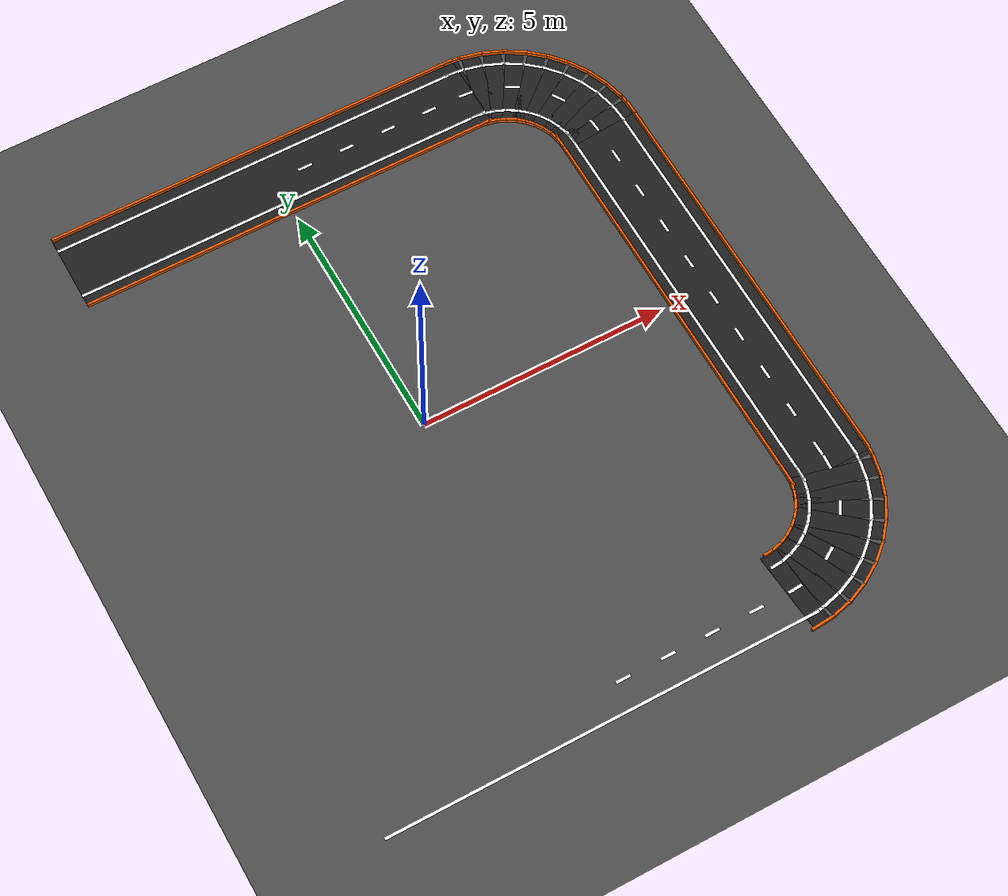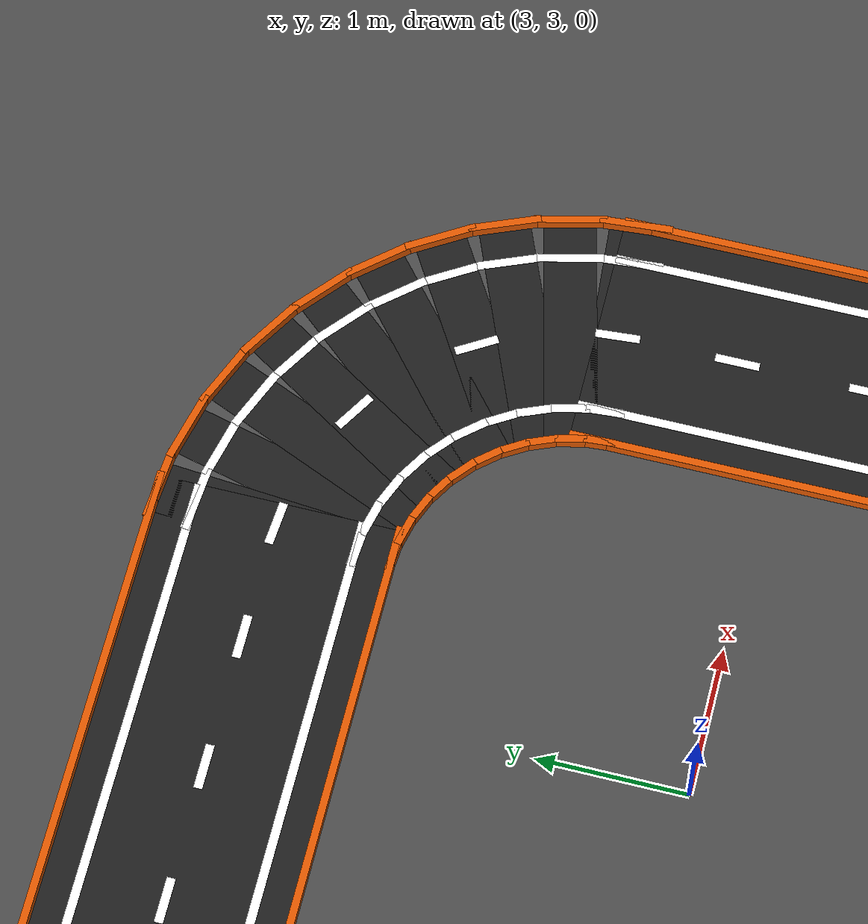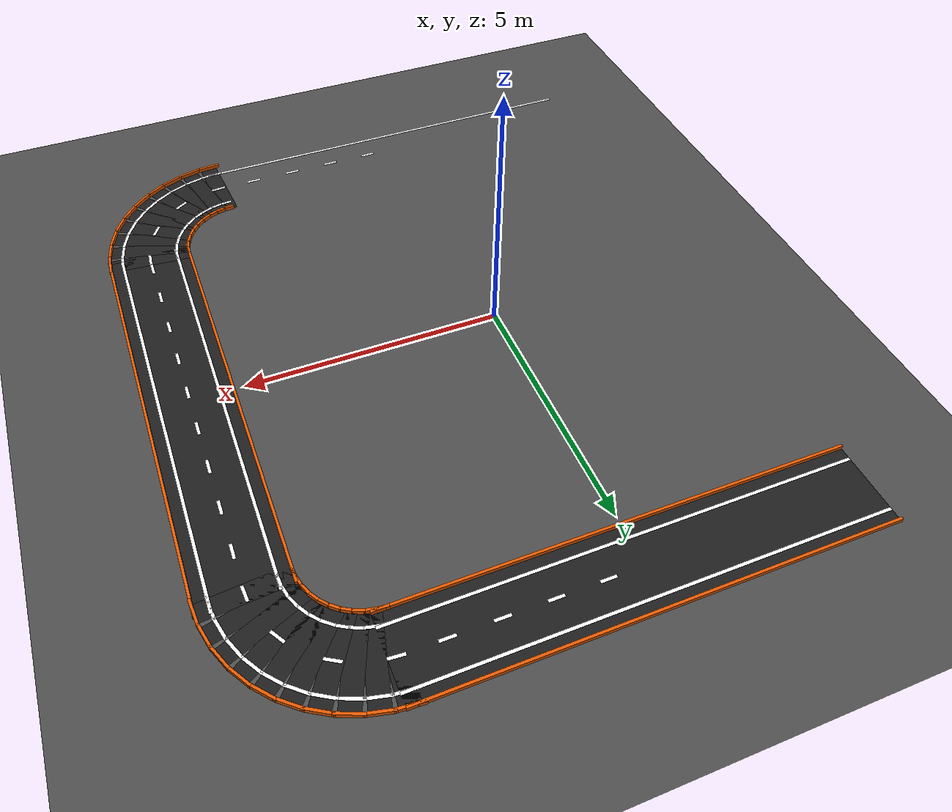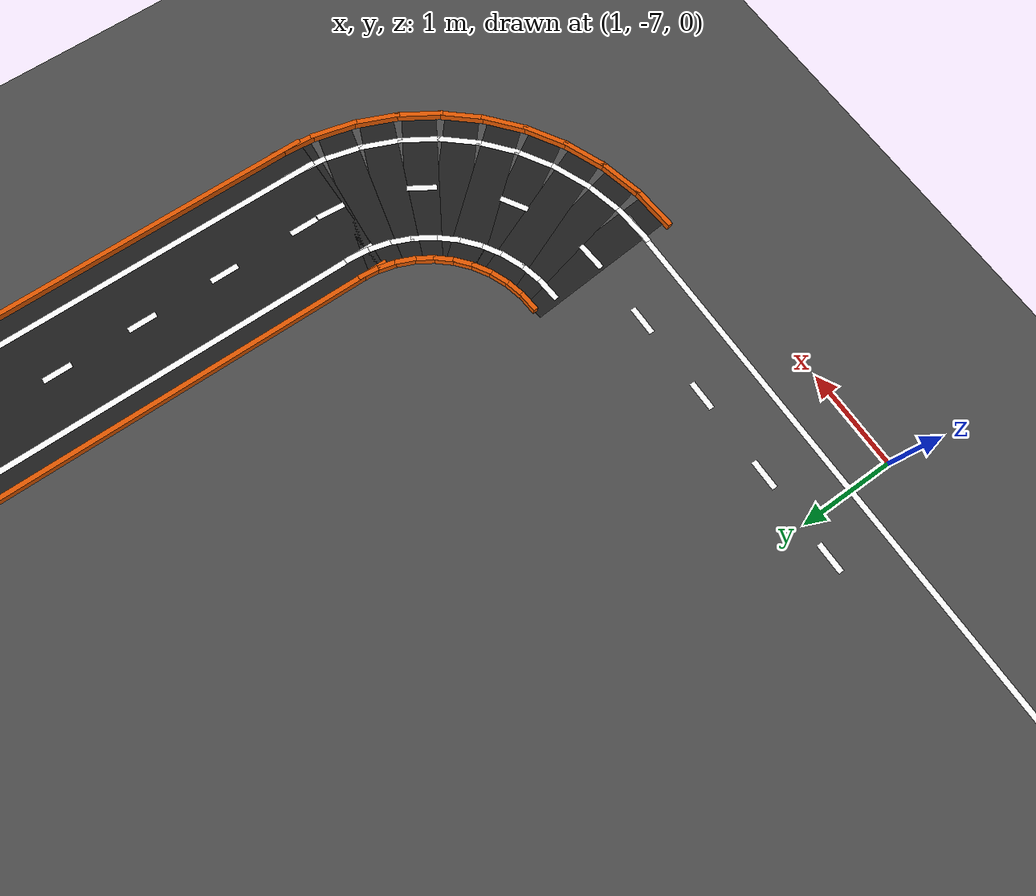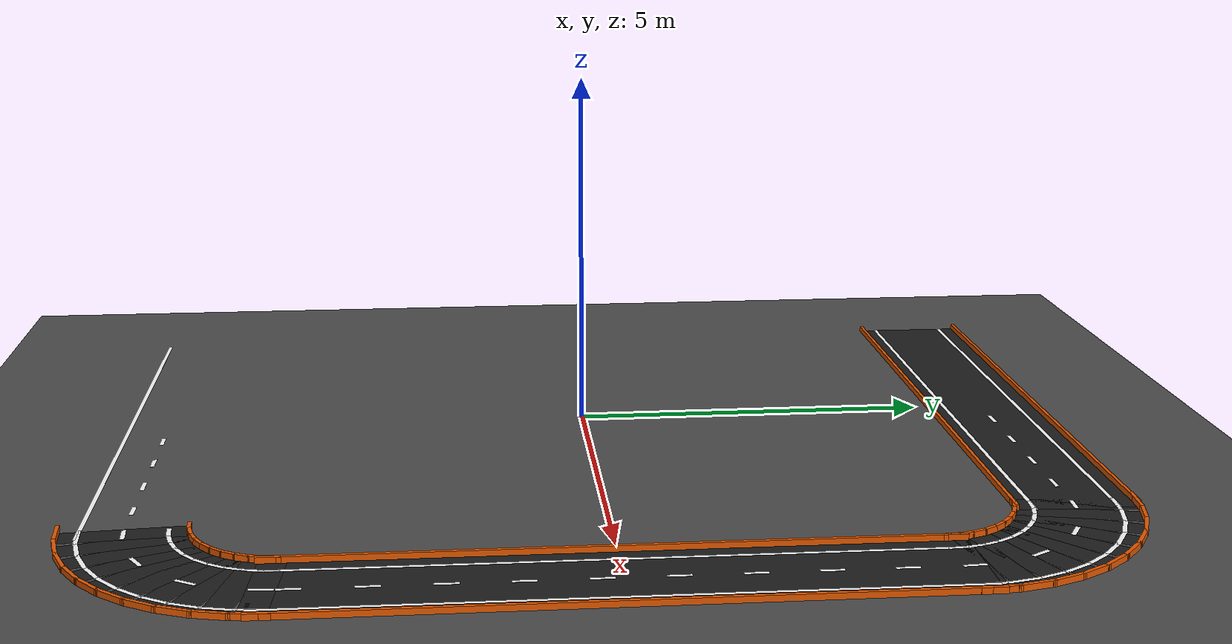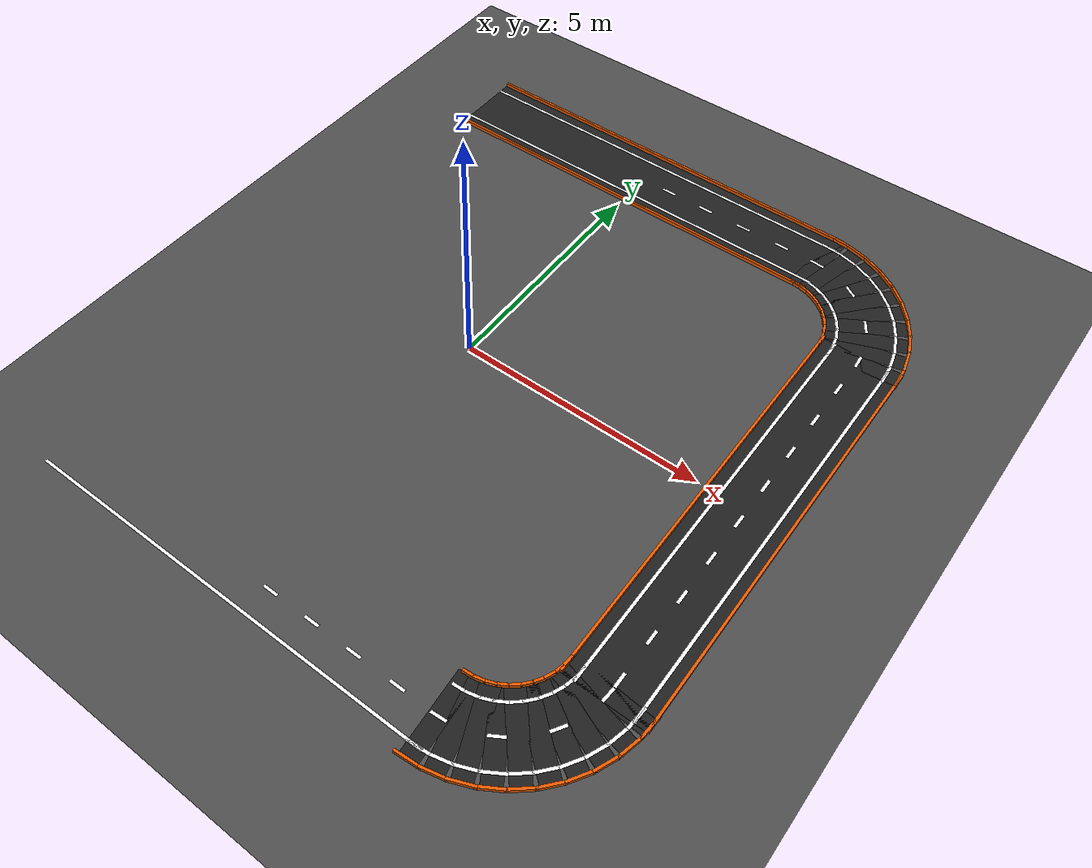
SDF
<sdf version="1.6">
 <world name="qcar_oval_wide">
  <model name="ground_plane">
   <static>true</static>
   <link name="link">
    <collision name="collision">
     <geometry><plane><normal>0 0 1</normal><size>200 200</size></plane></geometry>
    </collision>
    <visual name="visual">
     <geometry><plane><normal>0 0 1</normal><size>200 200</size></plane></geometry>
     <material><ambient>0.3 0.3 0.3 1</ambient><diffuse>0.3 0.3 0.3 1</diffuse></material>
    </visual>
   </link>
  </model>
  <model name="m4">
   <static>true</static>
   <pose>0.0000 -6.5500 0.00200 0 0 0.00000</pose>
   <link name="l">
    <visual name="v">
     <geometry><box><size>8.6000 0.0600 0.0010</size></box></geometry>
     <material><ambient>1 1 1 1</ambient><diffuse>1 1 1 1</diffuse></material>
    </visual>
   </link>
  </model>
  <model name="m10">
   <static>true</static>
   <pose>0.6500 -6.0000 0.00200 0 0 0.00000</pose>
   <link name="l">
    <visual name="v">
     <geometry><box><size>0.3000 0.0600 0.0010</size></box></geometry>
     <material><ambient>1 1 1 1</ambient><diffuse>1 1 1 1</diffuse></material>
    </visual>
   </link>
  </model>
  <model name="m11">
   <static>true</static>
   <pose>1.5500 -6.0000 0.00200 0 0 0.00000</pose>
   <link name="l">
    <visual name="v">
     <geometry><box><size>0.3000 0.0600 0.0010</size></box></geometry>
     <material><ambient>1 1 1 1</ambient><diffuse>1 1 1 1</diffuse></material>
    </visual>
   </link>
  </model>
  <model name="m12">
   <static>true</static>
   <pose>2.4500 -6.0000 0.00200 0 0 0.00000</pose>
   <link name="l">
    <visual name="v">
     <geometry><box><size>0.3000 0.0600 0.0010</size></box></geometry>
     <material><ambient>1 1 1 1</ambient><diffuse>1 1 1 1</diffuse></material>
    </visual>
   </link>
  </model>
  <model name="m13">
   <static>true</static>
   <pose>3.3500 -6.0000 0.00200 0 0 0.00000</pose>
   <link name="l">
    <visual name="v">
     <geometry><box><size>0.3000 0.0600 0.0010</size></box></geometry>
     <material><ambient>1 1 1 1</ambient><diffuse>1 1 1 1</diffuse></material>
    </visual>
   </link>
  </model>
  <model name="m14">
   <static>true</static>
   <pose>0.0000 6.0000 0.00100 0 0 0.00000</pose>
   <link name="l">
    <visual name="v">
     <geometry><box><size>8.6000 1.6000 0.0010</size></box></geometry>
     <material><ambient>0.12 0.12 0.12 1</ambient><diffuse>0.12 0.12 0.12 1</diffuse></material>
    </visual>
   </link>
  </model>
  <model name="m15">
   <static>true</static>
   <pose>0.0000 5.2000 0.04000 0 0 0.00000</pose>
   <link name="l">
    <visual name="v">
     <geometry><box><size>8.6000 0.0500 0.0800</size></box></geometry>
     <material><ambient>0.9 0.35 0.0 1</ambient><diffuse>0.9 0.35 0.0 1</diffuse></material>
    </visual>
   </link>
  </model>
  <model name="m16">
   <static>true</static>
   <pose>0.0000 6.8000 0.04000 0 0 0.00000</pose>
   <link name="l">
    <visual name="v">
     <geometry><box><size>8.6000 0.0500 0.0800</size></box></geometry>
     <material><ambient>0.9 0.35 0.0 1</ambient><diffuse>0.9 0.35 0.0 1</diffuse></material>
    </visual>
   </link>
  </model>
  <model name="m17">
   <static>true</static>
   <pose>0.0000 5.4500 0.00200 0 0 0.00000</pose>
   <link name="l">
    <visual name="v">
     <geometry><box><size>8.6000 0.0600 0.0010</size></box></geometry>
     <material><ambient>1 1 1 1</ambient><diffuse>1 1 1 1</diffuse></material>
    </visual>
   </link>
  </model>
  <model name="m18">
   <static>true</static>
   <pose>0.0000 6.5500 0.00200 0 0 0.00000</pose>
   <link name="l">
    <visual name="v">
     <geometry><box><size>8.6000 0.0600 0.0010</size></box></geometry>
     <material><ambient>1 1 1 1</ambient><diffuse>1 1 1 1</diffuse></material>
    </visual>
   </link>
  </model>
  <model name="m24">
   <static>true</static>
   <pose>0.6500 6.0000 0.00200 0 0 0.00000</pose>
   <link name="l">
    <visual name="v">
     <geometry><box><size>0.3000 0.0600 0.0010</size></box></geometry>
     <material><ambient>1 1 1 1</ambient><diffuse>1 1 1 1</diffuse></material>
    </visual>
   </link>
  </model>
  <model name="m25">
   <static>true</static>
   <pose>1.5500 6.0000 0.00200 0 0 0.00000</pose>
   <link name="l">
    <visual name="v">
     <geometry><box><size>0.3000 0.0600 0.0010</size></box></geometry>
     <material><ambient>1 1 1 1</ambient><diffuse>1 1 1 1</diffuse></material>
    </visual>
   </link>
  </model>
  <model name="m26">
   <static>true</static>
   <pose>2.4500 6.0000 0.00200 0 0 0.00000</pose>
   <link name="l">
    <visual name="v">
     <geometry><box><size>0.3000 0.0600 0.0010</size></box></geometry>
     <material><ambient>1 1 1 1</ambient><diffuse>1 1 1 1</diffuse></material>
    </visual>
   </link>
  </model>
  <model name="m27">
   <static>true</static>
   <pose>3.3500 6.0000 0.00200 0 0 0.00000</pose>
   <link name="l">
    <visual name="v">
     <geometry><box><size>0.3000 0.0600 0.0010</size></box></geometry>
     <material><ambient>1 1 1 1</ambient><diffuse>1 1 1 1</diffuse></material>
    </visual>
   </link>
  </model>
  <model name="m28">
   <static>true</static>
   <pose>6.0000 0.0000 0.00100 0 0 0.00000</pose>
   <link name="l">
    <visual name="v">
     <geometry><box><size>1.6000 8.6000 0.0010</size></box></geometry>
     <material><ambient>0.12 0.12 0.12 1</ambient><diffuse>0.12 0.12 0.12 1</diffuse></material>
    </visual>
   </link>
  </model>
  <model name="m29">
   <static>true</static>
   <pose>5.2000 0.0000 0.04000 0 0 0.00000</pose>
   <link name="l">
    <visual name="v">
     <geometry><box><size>0.0500 8.6000 0.0800</size></box></geometry>
     <material><ambient>0.9 0.35 0.0 1</ambient><diffuse>0.9 0.35 0.0 1</diffuse></material>
    </visual>
   </link>
  </model>
  <model name="m30">
   <static>true</static>
   <pose>6.8000 0.0000 0.04000 0 0 0.00000</pose>
   <link name="l">
    <visual name="v">
     <geometry><box><size>0.0500 8.6000 0.0800</size></box></geometry>
     <material><ambient>0.9 0.35 0.0 1</ambient><diffuse>0.9 0.35 0.0 1</diffuse></material>
    </visual>
   </link>
  </model>
  <model name="m31">
   <static>true</static>
   <pose>5.4500 0.0000 0.00200 0 0 0.00000</pose>
   <link name="l">
    <visual name="v">
     <geometry><box><size>0.0600 8.6000 0.0010</size></box></geometry>
     <material><ambient>1 1 1 1</ambient><diffuse>1 1 1 1</diffuse></material>
    </visual>
   </link>
  </model>
  <model name="m32">
   <static>true</static>
   <pose>6.5500 0.0000 0.00200 0 0 0.00000</pose>
   <link name="l">
    <visual name="v">
     <geometry><box><size>0.0600 8.6000 0.0010</size></box></geometry>
     <material><ambient>1 1 1 1</ambient><diffuse>1 1 1 1</diffuse></material>
    </visual>
   </link>
  </model>
  <model name="m33">
   <static>true</static>
   <pose>6.0000 -3.8500 0.00200 0 0 0.00000</pose>
   <link name="l">
    <visual name="v">
     <geometry><box><size>0.0600 0.3000 0.0010</size></box></geometry>
     <material><ambient>1 1 1 1</ambient><diffuse>1 1 1 1</diffuse></material>
    </visual>
   </link>
  </model>
  <model name="m34">
   <static>true</static>
   <pose>6.0000 -2.9500 0.00200 0 0 0.00000</pose>
   <link name="l">
    <visual name="v">
     <geometry><box><size>0.0600 0.3000 0.0010</size></box></geometry>
     <material><ambient>1 1 1 1</ambient><diffuse>1 1 1 1</diffuse></material>
    </visual>
   </link>
  </model>
  <model name="m35">
   <static>true</static>
   <pose>6.0000 -2.0500 0.00200 0 0 0.00000</pose>
   <link name="l">
    <visual name="v">
     <geometry><box><size>0.0600 0.3000 0.0010</size></box></geometry>
     <material><ambient>1 1 1 1</ambient><diffuse>1 1 1 1</diffuse></material>
    </visual>
   </link>
  </model>
  <model name="m36">
   <static>true</static>
   <pose>6.0000 -1.1500 0.00200 0 0 0.00000</pose>
   <link name="l">
    <visual name="v">
     <geometry><box><size>0.0600 0.3000 0.0010</size></box></geometry>
     <material><ambient>1 1 1 1</ambient><diffuse>1 1 1 1</diffuse></material>
    </visual>
   </link>
  </model>
  <model name="m37">
   <static>true</static>
   <pose>6.0000 -0.2500 0.00200 0 0 0.00000</pose>
   <link name="l">
    <visual name="v">
     <geometry><box><size>0.0600 0.3000 0.0010</size></box></geometry>
     <material><ambient>1 1 1 1</ambient><diffuse>1 1 1 1</diffuse></material>
    </visual>
   </link>
  </model>
  <model name="m38">
   <static>true</static>
   <pose>6.0000 0.6500 0.00200 0 0 0.00000</pose>
   <link name="l">
    <visual name="v">
     <geometry><box><size>0.0600 0.3000 0.0010</size></box></geometry>
     <material><ambient>1 1 1 1</ambient><diffuse>1 1 1 1</diffuse></material>
    </visual>
   </link>
  </model>
  <model name="m39">
   <static>true</static>
   <pose>6.0000 1.5500 0.00200 0 0 0.00000</pose>
   <link name="l">
    <visual name="v">
     <geometry><box><size>0.0600 0.3000 0.0010</size></box></geometry>
     <material><ambient>1 1 1 1</ambient><diffuse>1 1 1 1</diffuse></material>
    </visual>
   </link>
  </model>
  <model name="m40">
   <static>true</static>
   <pose>6.0000 2.4500 0.00200 0 0 0.00000</pose>
   <link name="l">
    <visual name="v">
     <geometry><box><size>0.0600 0.3000 0.0010</size></box></geometry>
     <material><ambient>1 1 1 1</ambient><diffuse>1 1 1 1</diffuse></material>
    </visual>
   </link>
  </model>
  <model name="m41">
   <static>true</static>
   <pose>6.0000 3.3500 0.00200 0 0 0.00000</pose>
   <link name="l">
    <visual name="v">
     <geometry><box><size>0.0600 0.3000 0.0010</size></box></geometry>
     <material><ambient>1 1 1 1</ambient><diffuse>1 1 1 1</diffuse></material>
    </visual>
   </link>
  </model>
  <model name="m56">
   <static>true</static>
   <pose>4.1569 -5.9938 0.00100 0 0 0.07854</pose>
   <link name="l">
    <visual name="v">
     <geometry><box><size>0.3519 1.6000 0.0010</size></box></geometry>
     <material><ambient>0.12 0.12 0.12 1</ambient><diffuse>0.12 0.12 0.12 1</diffuse></material>
    </visual>
   </link>
  </model>
  <model name="m57">
   <static>true</static>
   <pose>4.0942 -5.1963 0.04000 0 0 0.07854</pose>
   <link name="l">
    <visual name="v">
     <geometry><box><size>0.2111 0.0500 0.0800</size></box></geometry>
     <material><ambient>0.9 0.35 0.0 1</ambient><diffuse>0.9 0.35 0.0 1</diffuse></material>
    </visual>
   </link>
  </model>
  <model name="m58">
   <static>true</static>
   <pose>4.2197 -6.7914 0.04000 0 0 0.07854</pose>
   <link name="l">
    <visual name="v">
     <geometry><box><size>0.4926 0.0500 0.0800</size></box></geometry>
     <material><ambient>0.9 0.35 0.0 1</ambient><diffuse>0.9 0.35 0.0 1</diffuse></material>
    </visual>
   </link>
  </model>
  <model name="m59">
   <static>true</static>
   <pose>4.1138 -5.4455 0.00200 0 0 0.07854</pose>
   <link name="l">
    <visual name="v">
     <geometry><box><size>0.2551 0.0600 0.0010</size></box></geometry>
     <material><ambient>1 1 1 1</ambient><diffuse>1 1 1 1</diffuse></material>
    </visual>
   </link>
  </model>
  <model name="m60">
   <static>true</static>
   <pose>4.2001 -6.5421 0.00200 0 0 0.07854</pose>
   <link name="l">
    <visual name="v">
     <geometry><box><size>0.4486 0.0600 0.0010</size></box></geometry>
     <material><ambient>1 1 1 1</ambient><diffuse>1 1 1 1</diffuse></material>
    </visual>
   </link>
  </model>
  <model name="m61">
   <static>true</static>
   <pose>4.1569 -5.9938 0.00200 0 0 0.07854</pose>
   <link name="l">
    <visual name="v">
     <geometry><box><size>0.3000 0.0600 0.0010</size></box></geometry>
     <material><ambient>1 1 1 1</ambient><diffuse>1 1 1 1</diffuse></material>
    </visual>
   </link>
  </model>
  <model name="m62">
   <static>true</static>
   <pose>4.4669 -5.9447 0.00100 0 0 0.23562</pose>
   <link name="l">
    <visual name="v">
     <geometry><box><size>0.3519 1.6000 0.0010</size></box></geometry>
     <material><ambient>0.12 0.12 0.12 1</ambient><diffuse>0.12 0.12 0.12 1</diffuse></material>
    </visual>
   </link>
  </model>
  <model name="m63">
   <static>true</static>
   <pose>4.2801 -5.1668 0.04000 0 0 0.23562</pose>
   <link name="l">
    <visual name="v">
     <geometry><box><size>0.2111 0.0500 0.0800</size></box></geometry>
     <material><ambient>0.9 0.35 0.0 1</ambient><diffuse>0.9 0.35 0.0 1</diffuse></material>
    </visual>
   </link>
  </model>
  <model name="m64">
   <static>true</static>
   <pose>4.6536 -6.7226 0.04000 0 0 0.23562</pose>
   <link name="l">
    <visual name="v">
     <geometry><box><size>0.4926 0.0500 0.0800</size></box></geometry>
     <material><ambient>0.9 0.35 0.0 1</ambient><diffuse>0.9 0.35 0.0 1</diffuse></material>
    </visual>
   </link>
  </model>
  <model name="m65">
   <static>true</static>
   <pose>4.3385 -5.4099 0.00200 0 0 0.23562</pose>
   <link name="l">
    <visual name="v">
     <geometry><box><size>0.2551 0.0600 0.0010</size></box></geometry>
     <material><ambient>1 1 1 1</ambient><diffuse>1 1 1 1</diffuse></material>
    </visual>
   </link>
  </model>
  <model name="m66">
   <static>true</static>
   <pose>4.5953 -6.4795 0.00200 0 0 0.23562</pose>
   <link name="l">
    <visual name="v">
     <geometry><box><size>0.4486 0.0600 0.0010</size></box></geometry>
     <material><ambient>1 1 1 1</ambient><diffuse>1 1 1 1</diffuse></material>
    </visual>
   </link>
  </model>
  <model name="m67">
   <static>true</static>
   <pose>4.7654 -5.8478 0.00100 0 0 0.39270</pose>
   <link name="l">
    <visual name="v">
     <geometry><box><size>0.3519 1.6000 0.0010</size></box></geometry>
     <material><ambient>0.12 0.12 0.12 1</ambient><diffuse>0.12 0.12 0.12 1</diffuse></material>
    </visual>
   </link>
  </model>
  <model name="m68">
   <static>true</static>
   <pose>4.4592 -5.1087 0.04000 0 0 0.39270</pose>
   <link name="l">
    <visual name="v">
     <geometry><box><size>0.2111 0.0500 0.0800</size></box></geometry>
     <material><ambient>0.9 0.35 0.0 1</ambient><diffuse>0.9 0.35 0.0 1</diffuse></material>
    </visual>
   </link>
  </model>
  <model name="m69">
   <static>true</static>
   <pose>5.0715 -6.5869 0.04000 0 0 0.39270</pose>
   <link name="l">
    <visual name="v">
     <geometry><box><size>0.4926 0.0500 0.0800</size></box></geometry>
     <material><ambient>0.9 0.35 0.0 1</ambient><diffuse>0.9 0.35 0.0 1</diffuse></material>
    </visual>
   </link>
  </model>
  <model name="m70">
   <static>true</static>
   <pose>4.5549 -5.3396 0.00200 0 0 0.39270</pose>
   <link name="l">
    <visual name="v">
     <geometry><box><size>0.2551 0.0600 0.0010</size></box></geometry>
     <material><ambient>1 1 1 1</ambient><diffuse>1 1 1 1</diffuse></material>
    </visual>
   </link>
  </model>
  <model name="m71">
   <static>true</static>
   <pose>4.9758 -6.3559 0.00200 0 0 0.39270</pose>
   <link name="l">
    <visual name="v">
     <geometry><box><size>0.4486 0.0600 0.0010</size></box></geometry>
     <material><ambient>1 1 1 1</ambient><diffuse>1 1 1 1</diffuse></material>
    </visual>
   </link>
  </model>
  <model name="m72">
   <static>true</static>
   <pose>5.0450 -5.7053 0.00100 0 0 0.54978</pose>
   <link name="l">
    <visual name="v">
     <geometry><box><size>0.3519 1.6000 0.0010</size></box></geometry>
     <material><ambient>0.12 0.12 0.12 1</ambient><diffuse>0.12 0.12 0.12 1</diffuse></material>
    </visual>
   </link>
  </model>
  <model name="m73">
   <static>true</static>
   <pose>4.6270 -5.0232 0.04000 0 0 0.54978</pose>
   <link name="l">
    <visual name="v">
     <geometry><box><size>0.2111 0.0500 0.0800</size></box></geometry>
     <material><ambient>0.9 0.35 0.0 1</ambient><diffuse>0.9 0.35 0.0 1</diffuse></material>
    </visual>
   </link>
  </model>
  <model name="m74">
   <static>true</static>
   <pose>5.4630 -6.3874 0.04000 0 0 0.54978</pose>
   <link name="l">
    <visual name="v">
     <geometry><box><size>0.4926 0.0500 0.0800</size></box></geometry>
     <material><ambient>0.9 0.35 0.0 1</ambient><diffuse>0.9 0.35 0.0 1</diffuse></material>
    </visual>
   </link>
  </model>
  <model name="m75">
   <static>true</static>
   <pose>4.7576 -5.2363 0.00200 0 0 0.54978</pose>
   <link name="l">
    <visual name="v">
     <geometry><box><size>0.2551 0.0600 0.0010</size></box></geometry>
     <material><ambient>1 1 1 1</ambient><diffuse>1 1 1 1</diffuse></material>
    </visual>
   </link>
  </model>
  <model name="m76">
   <static>true</static>
   <pose>5.3324 -6.1742 0.00200 0 0 0.54978</pose>
   <link name="l">
    <visual name="v">
     <geometry><box><size>0.4486 0.0600 0.0010</size></box></geometry>
     <material><ambient>1 1 1 1</ambient><diffuse>1 1 1 1</diffuse></material>
    </visual>
   </link>
  </model>
  <model name="m77">
   <static>true</static>
   <pose>5.0450 -5.7053 0.00200 0 0 0.54978</pose>
   <link name="l">
    <visual name="v">
     <geometry><box><size>0.3000 0.0600 0.0010</size></box></geometry>
     <material><ambient>1 1 1 1</ambient><diffuse>1 1 1 1</diffuse></material>
    </visual>
   </link>
  </model>
  <model name="m78">
   <static>true</static>
   <pose>5.2989 -5.5208 0.00100 0 0 0.70686</pose>
   <link name="l">
    <visual name="v">
     <geometry><box><size>0.3519 1.6000 0.0010</size></box></geometry>
     <material><ambient>0.12 0.12 0.12 1</ambient><diffuse>0.12 0.12 0.12 1</diffuse></material>
    </visual>
   </link>
  </model>
  <model name="m79">
   <static>true</static>
   <pose>4.7793 -4.9125 0.04000 0 0 0.70686</pose>
   <link name="l">
    <visual name="v">
     <geometry><box><size>0.2111 0.0500 0.0800</size></box></geometry>
     <material><ambient>0.9 0.35 0.0 1</ambient><diffuse>0.9 0.35 0.0 1</diffuse></material>
    </visual>
   </link>
  </model>
  <model name="m80">
   <static>true</static>
   <pose>5.8185 -6.1291 0.04000 0 0 0.70686</pose>
   <link name="l">
    <visual name="v">
     <geometry><box><size>0.4926 0.0500 0.0800</size></box></geometry>
     <material><ambient>0.9 0.35 0.0 1</ambient><diffuse>0.9 0.35 0.0 1</diffuse></material>
    </visual>
   </link>
  </model>
  <model name="m81">
   <static>true</static>
   <pose>4.9417 -5.1026 0.00200 0 0 0.70686</pose>
   <link name="l">
    <visual name="v">
     <geometry><box><size>0.2551 0.0600 0.0010</size></box></geometry>
     <material><ambient>1 1 1 1</ambient><diffuse>1 1 1 1</diffuse></material>
    </visual>
   </link>
  </model>
  <model name="m82">
   <static>true</static>
   <pose>5.6561 -5.9390 0.00200 0 0 0.70686</pose>
   <link name="l">
    <visual name="v">
     <geometry><box><size>0.4486 0.0600 0.0010</size></box></geometry>
     <material><ambient>1 1 1 1</ambient><diffuse>1 1 1 1</diffuse></material>
    </visual>
   </link>
  </model>
  <model name="m83">
   <static>true</static>
   <pose>5.5208 -5.2989 0.00100 0 0 0.86394</pose>
   <link name="l">
    <visual name="v">
     <geometry><box><size>0.3519 1.6000 0.0010</size></box></geometry>
     <material><ambient>0.12 0.12 0.12 1</ambient><diffuse>0.12 0.12 0.12 1</diffuse></material>
    </visual>
   </link>
  </model>
  <model name="m84">
   <static>true</static>
   <pose>4.9125 -4.7793 0.04000 0 0 0.86394</pose>
   <link name="l">
    <visual name="v">
     <geometry><box><size>0.2111 0.0500 0.0800</size></box></geometry>
     <material><ambient>0.9 0.35 0.0 1</ambient><diffuse>0.9 0.35 0.0 1</diffuse></material>
    </visual>
   </link>
  </model>
  <model name="m85">
   <static>true</static>
   <pose>6.1291 -5.8185 0.04000 0 0 0.86394</pose>
   <link name="l">
    <visual name="v">
     <geometry><box><size>0.4926 0.0500 0.0800</size></box></geometry>
     <material><ambient>0.9 0.35 0.0 1</ambient><diffuse>0.9 0.35 0.0 1</diffuse></material>
    </visual>
   </link>
  </model>
  <model name="m86">
   <static>true</static>
   <pose>5.1026 -4.9417 0.00200 0 0 0.86394</pose>
   <link name="l">
    <visual name="v">
     <geometry><box><size>0.2551 0.0600 0.0010</size></box></geometry>
     <material><ambient>1 1 1 1</ambient><diffuse>1 1 1 1</diffuse></material>
    </visual>
   </link>
  </model>
  <model name="m87">
   <static>true</static>
   <pose>5.9390 -5.6561 0.00200 0 0 0.86394</pose>
   <link name="l">
    <visual name="v">
     <geometry><box><size>0.4486 0.0600 0.0010</size></box></geometry>
     <material><ambient>1 1 1 1</ambient><diffuse>1 1 1 1</diffuse></material>
    </visual>
   </link>
  </model>
  <model name="m88">
   <static>true</static>
   <pose>5.7053 -5.0450 0.00100 0 0 1.02102</pose>
   <link name="l">
    <visual name="v">
     <geometry><box><size>0.3519 1.6000 0.0010</size></box></geometry>
     <material><ambient>0.12 0.12 0.12 1</ambient><diffuse>0.12 0.12 0.12 1</diffuse></material>
    </visual>
   </link>
  </model>
  <model name="m89">
   <static>true</static>
   <pose>5.0232 -4.6270 0.04000 0 0 1.02102</pose>
   <link name="l">
    <visual name="v">
     <geometry><box><size>0.2111 0.0500 0.0800</size></box></geometry>
     <material><ambient>0.9 0.35 0.0 1</ambient><diffuse>0.9 0.35 0.0 1</diffuse></material>
    </visual>
   </link>
  </model>
  <model name="m90">
   <static>true</static>
   <pose>6.3874 -5.4630 0.04000 0 0 1.02102</pose>
   <link name="l">
    <visual name="v">
     <geometry><box><size>0.4926 0.0500 0.0800</size></box></geometry>
     <material><ambient>0.9 0.35 0.0 1</ambient><diffuse>0.9 0.35 0.0 1</diffuse></material>
    </visual>
   </link>
  </model>
  <model name="m91">
   <static>true</static>
   <pose>5.2363 -4.7576 0.00200 0 0 1.02102</pose>
   <link name="l">
    <visual name="v">
     <geometry><box><size>0.2551 0.0600 0.0010</size></box></geometry>
     <material><ambient>1 1 1 1</ambient><diffuse>1 1 1 1</diffuse></material>
    </visual>
   </link>
  </model>
  <model name="m92">
   <static>true</static>
   <pose>6.1742 -5.3324 0.00200 0 0 1.02102</pose>
   <link name="l">
    <visual name="v">
     <geometry><box><size>0.4486 0.0600 0.0010</size></box></geometry>
     <material><ambient>1 1 1 1</ambient><diffuse>1 1 1 1</diffuse></material>
    </visual>
   </link>
  </model>
  <model name="m93">
   <static>true</static>
   <pose>5.7053 -5.0450 0.00200 0 0 1.02102</pose>
   <link name="l">
    <visual name="v">
     <geometry><box><size>0.3000 0.0600 0.0010</size></box></geometry>
     <material><ambient>1 1 1 1</ambient><diffuse>1 1 1 1</diffuse></material>
    </visual>
   </link>
  </model>
  <model name="m94">
   <static>true</static>
   <pose>5.8478 -4.7654 0.00100 0 0 1.17810</pose>
   <link name="l">
    <visual name="v">
     <geometry><box><size>0.3519 1.6000 0.0010</size></box></geometry>
     <material><ambient>0.12 0.12 0.12 1</ambient><diffuse>0.12 0.12 0.12 1</diffuse></material>
    </visual>
   </link>
  </model>
  <model name="m95">
   <static>true</static>
   <pose>5.1087 -4.4592 0.04000 0 0 1.17810</pose>
   <link name="l">
    <visual name="v">
     <geometry><box><size>0.2111 0.0500 0.0800</size></box></geometry>
     <material><ambient>0.9 0.35 0.0 1</ambient><diffuse>0.9 0.35 0.0 1</diffuse></material>
    </visual>
   </link>
  </model>
  <model name="m96">
   <static>true</static>
   <pose>6.5869 -5.0715 0.04000 0 0 1.17810</pose>
   <link name="l">
    <visual name="v">
     <geometry><box><size>0.4926 0.0500 0.0800</size></box></geometry>
     <material><ambient>0.9 0.35 0.0 1</ambient><diffuse>0.9 0.35 0.0 1</diffuse></material>
    </visual>
   </link>
  </model>
  <model name="m97">
   <static>true</static>
   <pose>5.3396 -4.5549 0.00200 0 0 1.17810</pose>
   <link name="l">
    <visual name="v">
     <geometry><box><size>0.2551 0.0600 0.0010</size></box></geometry>
     <material><ambient>1 1 1 1</ambient><diffuse>1 1 1 1</diffuse></material>
    </visual>
   </link>
  </model>
  <model name="m98">
   <static>true</static>
   <pose>6.3559 -4.9758 0.00200 0 0 1.17810</pose>
   <link name="l">
    <visual name="v">
     <geometry><box><size>0.4486 0.0600 0.0010</size></box></geometry>
     <material><ambient>1 1 1 1</ambient><diffuse>1 1 1 1</diffuse></material>
    </visual>
   </link>
  </model>
  <model name="m99">
   <static>true</static>
   <pose>5.9447 -4.4669 0.00100 0 0 1.33518</pose>
   <link name="l">
    <visual name="v">
     <geometry><box><size>0.3519 1.6000 0.0010</size></box></geometry>
     <material><ambient>0.12 0.12 0.12 1</ambient><diffuse>0.12 0.12 0.12 1</diffuse></material>
    </visual>
   </link>
  </model>
  <model name="m100">
   <static>true</static>
   <pose>5.1668 -4.2801 0.04000 0 0 1.33518</pose>
   <link name="l">
    <visual name="v">
     <geometry><box><size>0.2111 0.0500 0.0800</size></box></geometry>
     <material><ambient>0.9 0.35 0.0 1</ambient><diffuse>0.9 0.35 0.0 1</diffuse></material>
    </visual>
   </link>
  </model>
  <model name="m101">
   <static>true</static>
   <pose>6.7226 -4.6536 0.04000 0 0 1.33518</pose>
   <link name="l">
    <visual name="v">
     <geometry><box><size>0.4926 0.0500 0.0800</size></box></geometry>
     <material><ambient>0.9 0.35 0.0 1</ambient><diffuse>0.9 0.35 0.0 1</diffuse></material>
    </visual>
   </link>
  </model>
  <model name="m102">
   <static>true</static>
   <pose>5.4099 -4.3385 0.00200 0 0 1.33518</pose>
   <link name="l">
    <visual name="v">
     <geometry><box><size>0.2551 0.0600 0.0010</size></box></geometry>
     <material><ambient>1 1 1 1</ambient><diffuse>1 1 1 1</diffuse></material>
    </visual>
   </link>
  </model>
  <model name="m103">
   <static>true</static>
   <pose>6.4795 -4.5953 0.00200 0 0 1.33518</pose>
   <link name="l">
    <visual name="v">
     <geometry><box><size>0.4486 0.0600 0.0010</size></box></geometry>
     <material><ambient>1 1 1 1</ambient><diffuse>1 1 1 1</diffuse></material>
    </visual>
   </link>
  </model>
  <model name="m104">
   <static>true</static>
   <pose>5.9938 -4.1569 0.00100 0 0 1.49226</pose>
   <link name="l">
    <visual name="v">
     <geometry><box><size>0.3519 1.6000 0.0010</size></box></geometry>
     <material><ambient>0.12 0.12 0.12 1</ambient><diffuse>0.12 0.12 0.12 1</diffuse></material>
    </visual>
   </link>
  </model>
  <model name="m105">
   <static>true</static>
   <pose>5.1963 -4.0942 0.04000 0 0 1.49226</pose>
   <link name="l">
    <visual name="v">
     <geometry><box><size>0.2111 0.0500 0.0800</size></box></geometry>
     <material><ambient>0.9 0.35 0.0 1</ambient><diffuse>0.9 0.35 0.0 1</diffuse></material>
    </visual>
   </link>
  </model>
  <model name="m106">
   <static>true</static>
   <pose>6.7914 -4.2197 0.04000 0 0 1.49226</pose>
   <link name="l">
    <visual name="v">
     <geometry><box><size>0.4926 0.0500 0.0800</size></box></geometry>
     <material><ambient>0.9 0.35 0.0 1</ambient><diffuse>0.9 0.35 0.0 1</diffuse></material>
    </visual>
   </link>
  </model>
  <model name="m107">
   <static>true</static>
   <pose>5.4455 -4.1138 0.00200 0 0 1.49226</pose>
   <link name="l">
    <visual name="v">
     <geometry><box><size>0.2551 0.0600 0.0010</size></box></geometry>
     <material><ambient>1 1 1 1</ambient><diffuse>1 1 1 1</diffuse></material>
    </visual>
   </link>
  </model>
  <model name="m108">
   <static>true</static>
   <pose>6.5421 -4.2001 0.00200 0 0 1.49226</pose>
   <link name="l">
    <visual name="v">
     <geometry><box><size>0.4486 0.0600 0.0010</size></box></geometry>
     <material><ambient>1 1 1 1</ambient><diffuse>1 1 1 1</diffuse></material>
    </visual>
   </link>
  </model>
  <model name="m109">
   <static>true</static>
   <pose>5.9938 -4.1569 0.00200 0 0 1.49226</pose>
   <link name="l">
    <visual name="v">
     <geometry><box><size>0.3000 0.0600 0.0010</size></box></geometry>
     <material><ambient>1 1 1 1</ambient><diffuse>1 1 1 1</diffuse></material>
    </visual>
   </link>
  </model>
  <model name="m110">
   <static>true</static>
   <pose>5.9938 4.1569 0.00100 0 0 1.64934</pose>
   <link name="l">
    <visual name="v">
     <geometry><box><size>0.3519 1.6000 0.0010</size></box></geometry>
     <material><ambient>0.12 0.12 0.12 1</ambient><diffuse>0.12 0.12 0.12 1</diffuse></material>
    </visual>
   </link>
  </model>
  <model name="m111">
   <static>true</static>
   <pose>5.1963 4.0942 0.04000 0 0 1.64934</pose>
   <link name="l">
    <visual name="v">
     <geometry><box><size>0.2111 0.0500 0.0800</size></box></geometry>
     <material><ambient>0.9 0.35 0.0 1</ambient><diffuse>0.9 0.35 0.0 1</diffuse></material>
    </visual>
   </link>
  </model>
  <model name="m112">
   <static>true</static>
   <pose>6.7914 4.2197 0.04000 0 0 1.64934</pose>
   <link name="l">
    <visual name="v">
     <geometry><box><size>0.4926 0.0500 0.0800</size></box></geometry>
     <material><ambient>0.9 0.35 0.0 1</ambient><diffuse>0.9 0.35 0.0 1</diffuse></material>
    </visual>
   </link>
  </model>
  <model name="m113">
   <static>true</static>
   <pose>5.4455 4.1138 0.00200 0 0 1.64934</pose>
   <link name="l">
    <visual name="v">
     <geometry><box><size>0.2551 0.0600 0.0010</size></box></geometry>
     <material><ambient>1 1 1 1</ambient><diffuse>1 1 1 1</diffuse></material>
    </visual>
   </link>
  </model>
  <model name="m114">
   <static>true</static>
   <pose>6.5421 4.2001 0.00200 0 0 1.64934</pose>
   <link name="l">
    <visual name="v">
     <geometry><box><size>0.4486 0.0600 0.0010</size></box></geometry>
     <material><ambient>1 1 1 1</ambient><diffuse>1 1 1 1</diffuse></material>
    </visual>
   </link>
  </model>
  <model name="m115">
   <static>true</static>
   <pose>5.9938 4.1569 0.00200 0 0 1.64934</pose>
   <link name="l">
    <visual name="v">
     <geometry><box><size>0.3000 0.0600 0.0010</size></box></geometry>
     <material><ambient>1 1 1 1</ambient><diffuse>1 1 1 1</diffuse></material>
    </visual>
   </link>
  </model>
  <model name="m116">
   <static>true</static>
   <pose>5.9447 4.4669 0.00100 0 0 1.80642</pose>
   <link name="l">
    <visual name="v">
     <geometry><box><size>0.3519 1.6000 0.0010</size></box></geometry>
     <material><ambient>0.12 0.12 0.12 1</ambient><diffuse>0.12 0.12 0.12 1</diffuse></material>
    </visual>
   </link>
  </model>
  <model name="m117">
   <static>true</static>
   <pose>5.1668 4.2801 0.04000 0 0 1.80642</pose>
   <link name="l">
    <visual name="v">
     <geometry><box><size>0.2111 0.0500 0.0800</size></box></geometry>
     <material><ambient>0.9 0.35 0.0 1</ambient><diffuse>0.9 0.35 0.0 1</diffuse></material>
    </visual>
   </link>
  </model>
  <model name="m118">
   <static>true</static>
   <pose>6.7226 4.6536 0.04000 0 0 1.80642</pose>
   <link name="l">
    <visual name="v">
     <geometry><box><size>0.4926 0.0500 0.0800</size></box></geometry>
     <material><ambient>0.9 0.35 0.0 1</ambient><diffuse>0.9 0.35 0.0 1</diffuse></material>
    </visual>
   </link>
  </model>
  <model name="m119">
   <static>true</static>
   <pose>5.4099 4.3385 0.00200 0 0 1.80642</pose>
   <link name="l">
    <visual name="v">
     <geometry><box><size>0.2551 0.0600 0.0010</size></box></geometry>
     <material><ambient>1 1 1 1</ambient><diffuse>1 1 1 1</diffuse></material>
    </visual>
   </link>
  </model>
  <model name="m120">
   <static>true</static>
   <pose>6.4795 4.5953 0.00200 0 0 1.80642</pose>
   <link name="l">
    <visual name="v">
     <geometry><box><size>0.4486 0.0600 0.0010</size></box></geometry>
     <material><ambient>1 1 1 1</ambient><diffuse>1 1 1 1</diffuse></material>
    </visual>
   </link>
  </model>
  <model name="m121">
   <static>true</static>
   <pose>5.8478 4.7654 0.00100 0 0 1.96350</pose>
   <link name="l">
    <visual name="v">
     <geometry><box><size>0.3519 1.6000 0.0010</size></box></geometry>
     <material><ambient>0.12 0.12 0.12 1</ambient><diffuse>0.12 0.12 0.12 1</diffuse></material>
    </visual>
   </link>
  </model>
  <model name="m122">
   <static>true</static>
   <pose>5.1087 4.4592 0.04000 0 0 1.96350</pose>
   <link name="l">
    <visual name="v">
     <geometry><box><size>0.2111 0.0500 0.0800</size></box></geometry>
     <material><ambient>0.9 0.35 0.0 1</ambient><diffuse>0.9 0.35 0.0 1</diffuse></material>
    </visual>
   </link>
  </model>
  <model name="m123">
   <static>true</static>
   <pose>6.5869 5.0715 0.04000 0 0 1.96350</pose>
   <link name="l">
    <visual name="v">
     <geometry><box><size>0.4926 0.0500 0.0800</size></box></geometry>
     <material><ambient>0.9 0.35 0.0 1</ambient><diffuse>0.9 0.35 0.0 1</diffuse></material>
    </visual>
   </link>
  </model>
  <model name="m124">
   <static>true</static>
   <pose>5.3396 4.5549 0.00200 0 0 1.96350</pose>
   <link name="l">
    <visual name="v">
     <geometry><box><size>0.2551 0.0600 0.0010</size></box></geometry>
     <material><ambient>1 1 1 1</ambient><diffuse>1 1 1 1</diffuse></material>
    </visual>
   </link>
  </model>
  <model name="m125">
   <static>true</static>
   <pose>6.3559 4.9758 0.00200 0 0 1.96350</pose>
   <link name="l">
    <visual name="v">
     <geometry><box><size>0.4486 0.0600 0.0010</size></box></geometry>
     <material><ambient>1 1 1 1</ambient><diffuse>1 1 1 1</diffuse></material>
    </visual>
   </link>
  </model>
  <model name="m126">
   <static>true</static>
   <pose>5.7053 5.0450 0.00100 0 0 2.12058</pose>
   <link name="l">
    <visual name="v">
     <geometry><box><size>0.3519 1.6000 0.0010</size></box></geometry>
     <material><ambient>0.12 0.12 0.12 1</ambient><diffuse>0.12 0.12 0.12 1</diffuse></material>
    </visual>
   </link>
  </model>
  <model name="m127">
   <static>true</static>
   <pose>5.0232 4.6270 0.04000 0 0 2.12058</pose>
   <link name="l">
    <visual name="v">
     <geometry><box><size>0.2111 0.0500 0.0800</size></box></geometry>
     <material><ambient>0.9 0.35 0.0 1</ambient><diffuse>0.9 0.35 0.0 1</diffuse></material>
    </visual>
   </link>
  </model>
  <model name="m128">
   <static>true</static>
   <pose>6.3874 5.4630 0.04000 0 0 2.12058</pose>
   <link name="l">
    <visual name="v">
     <geometry><box><size>0.4926 0.0500 0.0800</size></box></geometry>
     <material><ambient>0.9 0.35 0.0 1</ambient><diffuse>0.9 0.35 0.0 1</diffuse></material>
    </visual>
   </link>
  </model>
  <model name="m129">
   <static>true</static>
   <pose>5.2363 4.7576 0.00200 0 0 2.12058</pose>
   <link name="l">
    <visual name="v">
     <geometry><box><size>0.2551 0.0600 0.0010</size></box></geometry>
     <material><ambient>1 1 1 1</ambient><diffuse>1 1 1 1</diffuse></material>
    </visual>
   </link>
  </model>
  <model name="m130">
   <static>true</static>
   <pose>6.1742 5.3324 0.00200 0 0 2.12058</pose>
   <link name="l">
    <visual name="v">
     <geometry><box><size>0.4486 0.0600 0.0010</size></box></geometry>
     <material><ambient>1 1 1 1</ambient><diffuse>1 1 1 1</diffuse></material>
    </visual>
   </link>
  </model>
  <model name="m131">
   <static>true</static>
   <pose>5.7053 5.0450 0.00200 0 0 2.12058</pose>
   <link name="l">
    <visual name="v">
     <geometry><box><size>0.3000 0.0600 0.0010</size></box></geometry>
     <material><ambient>1 1 1 1</ambient><diffuse>1 1 1 1</diffuse></material>
    </visual>
   </link>
  </model>
  <model name="m132">
   <static>true</static>
   <pose>5.5208 5.2989 0.00100 0 0 2.27765</pose>
   <link name="l">
    <visual name="v">
     <geometry><box><size>0.3519 1.6000 0.0010</size></box></geometry>
     <material><ambient>0.12 0.12 0.12 1</ambient><diffuse>0.12 0.12 0.12 1</diffuse></material>
    </visual>
   </link>
  </model>
  <model name="m133">
   <static>true</static>
   <pose>4.9125 4.7793 0.04000 0 0 2.27765</pose>
   <link name="l">
    <visual name="v">
     <geometry><box><size>0.2111 0.0500 0.0800</size></box></geometry>
     <material><ambient>0.9 0.35 0.0 1</ambient><diffuse>0.9 0.35 0.0 1</diffuse></material>
    </visual>
   </link>
  </model>
  <model name="m134">
   <static>true</static>
   <pose>6.1291 5.8185 0.04000 0 0 2.27765</pose>
   <link name="l">
    <visual name="v">
     <geometry><box><size>0.4926 0.0500 0.0800</size></box></geometry>
     <material><ambient>0.9 0.35 0.0 1</ambient><diffuse>0.9 0.35 0.0 1</diffuse></material>
    </visual>
   </link>
  </model>
  <model name="m135">
   <static>true</static>
   <pose>5.1026 4.9417 0.00200 0 0 2.27765</pose>
   <link name="l">
    <visual name="v">
     <geometry><box><size>0.2551 0.0600 0.0010</size></box></geometry>
     <material><ambient>1 1 1 1</ambient><diffuse>1 1 1 1</diffuse></material>
    </visual>
   </link>
  </model>
  <model name="m136">
   <static>true</static>
   <pose>5.9390 5.6561 0.00200 0 0 2.27765</pose>
   <link name="l">
    <visual name="v">
     <geometry><box><size>0.4486 0.0600 0.0010</size></box></geometry>
     <material><ambient>1 1 1 1</ambient><diffuse>1 1 1 1</diffuse></material>
    </visual>
   </link>
  </model>
  <model name="m137">
   <static>true</static>
   <pose>5.2989 5.5208 0.00100 0 0 2.43473</pose>
   <link name="l">
    <visual name="v">
     <geometry><box><size>0.3519 1.6000 0.0010</size></box></geometry>
     <material><ambient>0.12 0.12 0.12 1</ambient><diffuse>0.12 0.12 0.12 1</diffuse></material>
    </visual>
   </link>
  </model>
  <model name="m138">
   <static>true</static>
   <pose>4.7793 4.9125 0.04000 0 0 2.43473</pose>
   <link name="l">
    <visual name="v">
     <geometry><box><size>0.2111 0.0500 0.0800</size></box></geometry>
     <material><ambient>0.9 0.35 0.0 1</ambient><diffuse>0.9 0.35 0.0 1</diffuse></material>
    </visual>
   </link>
  </model>
  <model name="m139">
   <static>true</static>
   <pose>5.8185 6.1291 0.04000 0 0 2.43473</pose>
   <link name="l">
    <visual name="v">
     <geometry><box><size>0.4926 0.0500 0.0800</size></box></geometry>
     <material><ambient>0.9 0.35 0.0 1</ambient><diffuse>0.9 0.35 0.0 1</diffuse></material>
    </visual>
   </link>
  </model>
  <model name="m140">
   <static>true</static>
   <pose>4.9417 5.1026 0.00200 0 0 2.43473</pose>
   <link name="l">
    <visual name="v">
     <geometry><box><size>0.2551 0.0600 0.0010</size></box></geometry>
     <material><ambient>1 1 1 1</ambient><diffuse>1 1 1 1</diffuse></material>
    </visual>
   </link>
  </model>
  <model name="m141">
   <static>true</static>
   <pose>5.6561 5.9390 0.00200 0 0 2.43473</pose>
   <link name="l">
    <visual name="v">
     <geometry><box><size>0.4486 0.0600 0.0010</size></box></geometry>
     <material><ambient>1 1 1 1</ambient><diffuse>1 1 1 1</diffuse></material>
    </visual>
   </link>
  </model>
  <model name="m142">
   <static>true</static>
   <pose>5.0450 5.7053 0.00100 0 0 2.59181</pose>
   <link name="l">
    <visual name="v">
     <geometry><box><size>0.3519 1.6000 0.0010</size></box></geometry>
     <material><ambient>0.12 0.12 0.12 1</ambient><diffuse>0.12 0.12 0.12 1</diffuse></material>
    </visual>
   </link>
  </model>
  <model name="m143">
   <static>true</static>
   <pose>4.6270 5.0232 0.04000 0 0 2.59181</pose>
   <link name="l">
    <visual name="v">
     <geometry><box><size>0.2111 0.0500 0.0800</size></box></geometry>
     <material><ambient>0.9 0.35 0.0 1</ambient><diffuse>0.9 0.35 0.0 1</diffuse></material>
    </visual>
   </link>
  </model>
  <model name="m144">
   <static>true</static>
   <pose>5.4630 6.3874 0.04000 0 0 2.59181</pose>
   <link name="l">
    <visual name="v">
     <geometry><box><size>0.4926 0.0500 0.0800</size></box></geometry>
     <material><ambient>0.9 0.35 0.0 1</ambient><diffuse>0.9 0.35 0.0 1</diffuse></material>
    </visual>
   </link>
  </model>
  <model name="m145">
   <static>true</static>
   <pose>4.7576 5.2363 0.00200 0 0 2.59181</pose>
   <link name="l">
    <visual name="v">
     <geometry><box><size>0.2551 0.0600 0.0010</size></box></geometry>
     <material><ambient>1 1 1 1</ambient><diffuse>1 1 1 1</diffuse></material>
    </visual>
   </link>
  </model>
  <model name="m146">
   <static>true</static>
   <pose>5.3324 6.1742 0.00200 0 0 2.59181</pose>
   <link name="l">
    <visual name="v">
     <geometry><box><size>0.4486 0.0600 0.0010</size></box></geometry>
     <material><ambient>1 1 1 1</ambient><diffuse>1 1 1 1</diffuse></material>
    </visual>
   </link>
  </model>
  <model name="m147">
   <static>true</static>
   <pose>5.0450 5.7053 0.00200 0 0 2.59181</pose>
   <link name="l">
    <visual name="v">
     <geometry><box><size>0.3000 0.0600 0.0010</size></box></geometry>
     <material><ambient>1 1 1 1</ambient><diffuse>1 1 1 1</diffuse></material>
    </visual>
   </link>
  </model>
  <model name="m148">
   <static>true</static>
   <pose>4.7654 5.8478 0.00100 0 0 2.74889</pose>
   <link name="l">
    <visual name="v">
     <geometry><box><size>0.3519 1.6000 0.0010</size></box></geometry>
     <material><ambient>0.12 0.12 0.12 1</ambient><diffuse>0.12 0.12 0.12 1</diffuse></material>
    </visual>
   </link>
  </model>
  <model name="m149">
   <static>true</static>
   <pose>4.4592 5.1087 0.04000 0 0 2.74889</pose>
   <link name="l">
    <visual name="v">
     <geometry><box><size>0.2111 0.0500 0.0800</size></box></geometry>
     <material><ambient>0.9 0.35 0.0 1</ambient><diffuse>0.9 0.35 0.0 1</diffuse></material>
    </visual>
   </link>
  </model>
  <model name="m150">
   <static>true</static>
   <pose>5.0715 6.5869 0.04000 0 0 2.74889</pose>
   <link name="l">
    <visual name="v">
     <geometry><box><size>0.4926 0.0500 0.0800</size></box></geometry>
     <material><ambient>0.9 0.35 0.0 1</ambient><diffuse>0.9 0.35 0.0 1</diffuse></material>
    </visual>
   </link>
  </model>
  <model name="m151">
   <static>true</static>
   <pose>4.5549 5.3396 0.00200 0 0 2.74889</pose>
   <link name="l">
    <visual name="v">
     <geometry><box><size>0.2551 0.0600 0.0010</size></box></geometry>
     <material><ambient>1 1 1 1</ambient><diffuse>1 1 1 1</diffuse></material>
    </visual>
   </link>
  </model>
  <model name="m152">
   <static>true</static>
   <pose>4.9758 6.3559 0.00200 0 0 2.74889</pose>
   <link name="l">
    <visual name="v">
     <geometry><box><size>0.4486 0.0600 0.0010</size></box></geometry>
     <material><ambient>1 1 1 1</ambient><diffuse>1 1 1 1</diffuse></material>
    </visual>
   </link>
  </model>
  <model name="m153">
   <static>true</static>
   <pose>4.4669 5.9447 0.00100 0 0 2.90597</pose>
   <link name="l">
    <visual name="v">
     <geometry><box><size>0.3519 1.6000 0.0010</size></box></geometry>
     <material><ambient>0.12 0.12 0.12 1</ambient><diffuse>0.12 0.12 0.12 1</diffuse></material>
    </visual>
   </link>
  </model>
  <model name="m154">
   <static>true</static>
   <pose>4.2801 5.1668 0.04000 0 0 2.90597</pose>
   <link name="l">
    <visual name="v">
     <geometry><box><size>0.2111 0.0500 0.0800</size></box></geometry>
     <material><ambient>0.9 0.35 0.0 1</ambient><diffuse>0.9 0.35 0.0 1</diffuse></material>
    </visual>
   </link>
  </model>
  <model name="m155">
   <static>true</static>
   <pose>4.6536 6.7226 0.04000 0 0 2.90597</pose>
   <link name="l">
    <visual name="v">
     <geometry><box><size>0.4926 0.0500 0.0800</size></box></geometry>
     <material><ambient>0.9 0.35 0.0 1</ambient><diffuse>0.9 0.35 0.0 1</diffuse></material>
    </visual>
   </link>
  </model>
  <model name="m156">
   <static>true</static>
   <pose>4.3385 5.4099 0.00200 0 0 2.90597</pose>
   <link name="l">
    <visual name="v">
     <geometry><box><size>0.2551 0.0600 0.0010</size></box></geometry>
     <material><ambient>1 1 1 1</ambient><diffuse>1 1 1 1</diffuse></material>
    </visual>
   </link>
  </model>
  <model name="m157">
   <static>true</static>
   <pose>4.5953 6.4795 0.00200 0 0 2.90597</pose>
   <link name="l">
    <visual name="v">
     <geometry><box><size>0.4486 0.0600 0.0010</size></box></geometry>
     <material><ambient>1 1 1 1</ambient><diffuse>1 1 1 1</diffuse></material>
    </visual>
   </link>
  </model>
  <model name="m158">
   <static>true</static>
   <pose>4.1569 5.9938 0.00100 0 0 3.06305</pose>
   <link name="l">
    <visual name="v">
     <geometry><box><size>0.3519 1.6000 0.0010</size></box></geometry>
     <material><ambient>0.12 0.12 0.12 1</ambient><diffuse>0.12 0.12 0.12 1</diffuse></material>
    </visual>
   </link>
  </model>
  <model name="m159">
   <static>true</static>
   <pose>4.0942 5.1963 0.04000 0 0 3.06305</pose>
   <link name="l">
    <visual name="v">
     <geometry><box><size>0.2111 0.0500 0.0800</size></box></geometry>
     <material><ambient>0.9 0.35 0.0 1</ambient><diffuse>0.9 0.35 0.0 1</diffuse></material>
    </visual>
   </link>
  </model>
  <model name="m160">
   <static>true</static>
   <pose>4.2197 6.7914 0.04000 0 0 3.06305</pose>
   <link name="l">
    <visual name="v">
     <geometry><box><size>0.4926 0.0500 0.0800</size></box></geometry>
     <material><ambient>0.9 0.35 0.0 1</ambient><diffuse>0.9 0.35 0.0 1</diffuse></material>
    </visual>
   </link>
  </model>
  <model name="m161">
   <static>true</static>
   <pose>4.1138 5.4455 0.00200 0 0 3.06305</pose>
   <link name="l">
    <visual name="v">
     <geometry><box><size>0.2551 0.0600 0.0010</size></box></geometry>
     <material><ambient>1 1 1 1</ambient><diffuse>1 1 1 1</diffuse></material>
    </visual>
   </link>
  </model>
  <model name="m162">
   <static>true</static>
   <pose>4.2001 6.5421 0.00200 0 0 3.06305</pose>
   <link name="l">
    <visual name="v">
     <geometry><box><size>0.4486 0.0600 0.0010</size></box></geometry>
     <material><ambient>1 1 1 1</ambient><diffuse>1 1 1 1</diffuse></material>
    </visual>
   </link>
  </model>
  <model name="m163">
   <static>true</static>
   <pose>4.1569 5.9938 0.00200 0 0 3.06305</pose>
   <link name="l">
    <visual name="v">
     <geometry><box><size>0.3000 0.0600 0.0010</size></box></geometry>
     <material><ambient>1 1 1 1</ambient><diffuse>1 1 1 1</diffuse></material>
    </visual>
   </link>
  </model>
 </world>
</sdf>
